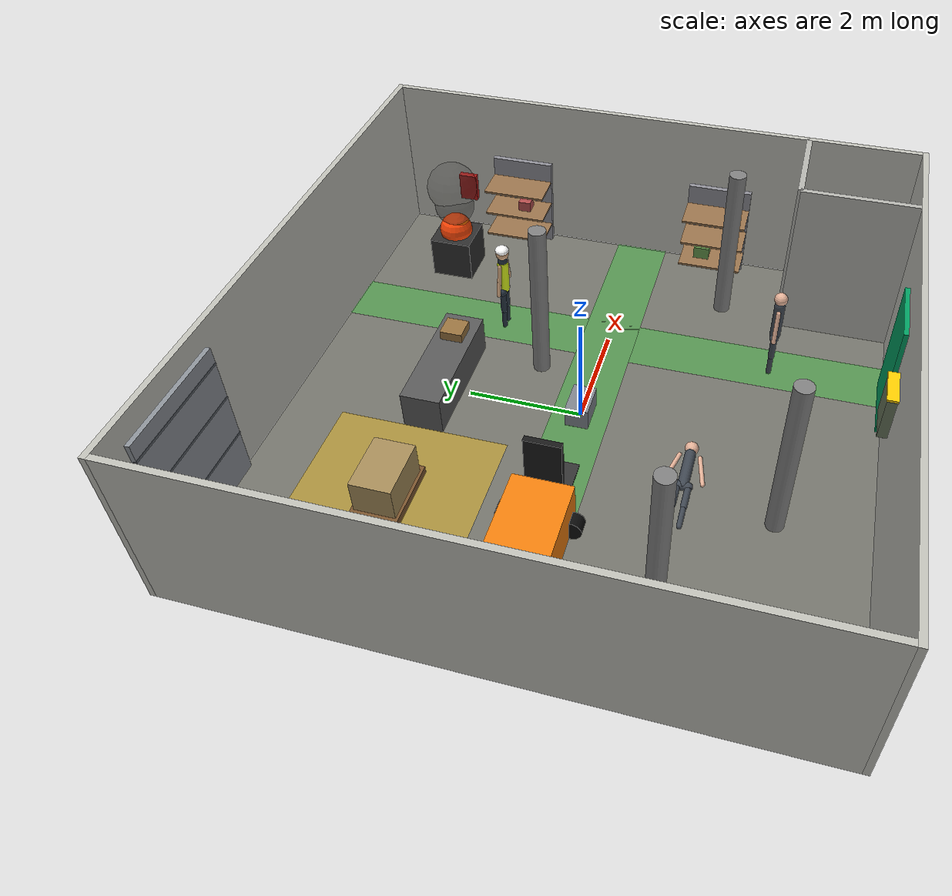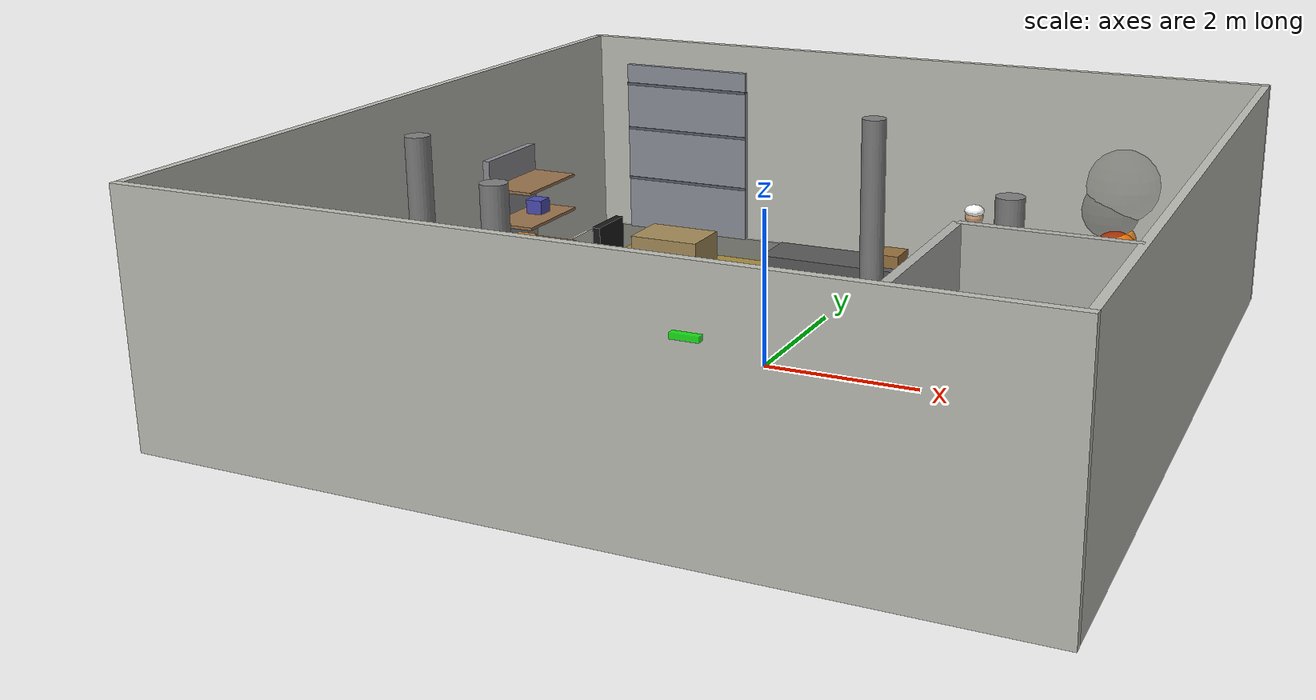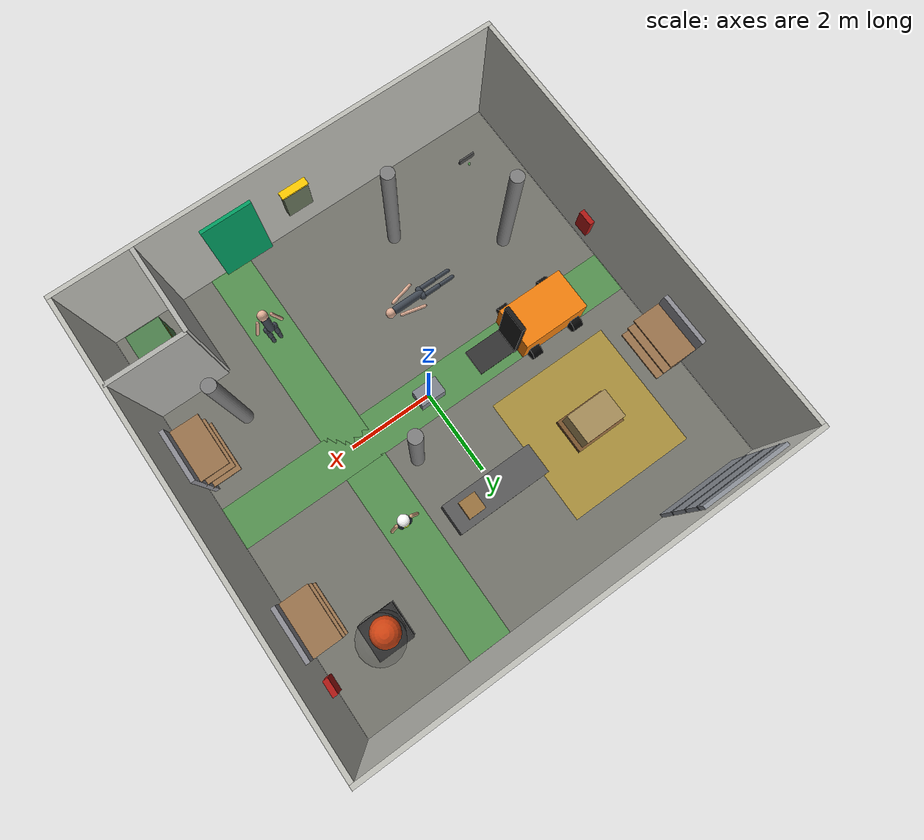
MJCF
<mujoco model="industrial_factory">
    <compiler inertiafromgeom="true"/>
    <worldbody>
        <!-- ================================================================
             1. 기본 공장 바닥 및 조명
             ================================================================ -->
        <geom name="floor" type="plane" size="5 5 0.1" rgba="0.45 0.45 0.42 1" friction="1.0 0.005 0.0001"/>
        <light directional="true" diffuse=".8 .8 .8" specular=".3 .3 .3" pos="0 0 5" dir="0 0 -1"/>
        <!-- 보조 조명 -->
        <light directional="false" diffuse=".4 .4 .4" specular=".1 .1 .1" pos="3 3 3.5" dir="-0.3 -0.3 -1"/>
        <light directional="false" diffuse=".4 .4 .4" specular=".1 .1 .1" pos="-3 -3 3.5" dir="0.3 0.3 -1"/>

        <!-- 안전 보행로 (초록색 얇은 바닥) -->
        <geom name="walkway_main" type="box" size="5.0 0.5 0.001" pos="0 0 0.001" rgba="0.2 0.8 0.2 0.4" contype="0" conaffinity="0"/>
        <geom name="walkway_sub" type="box" size="0.5 5.0 0.001" pos="2 0 0.001" rgba="0.2 0.8 0.2 0.4" contype="0" conaffinity="0"/>

        <!-- 물류 적재 구역 (노란색 얇은 바닥) -->
        <geom name="storage_area_1" type="box" size="1.5 1.5 0.001" pos="-2.5 2.5 0.001" rgba="0.92 0.72 0.1 0.5" contype="0" conaffinity="0"/>

        <!-- ================================================================
             3. 벽면 (10x10)
             ================================================================ -->
        <geom name="wall_north" type="box" size="5.1 0.05 1.5" pos="0 5.05 1.5" rgba="0.75 0.75 0.72 1"/>
        <geom name="wall_south" type="box" size="5.1 0.05 1.5" pos="0 -5.05 1.5" rgba="0.75 0.75 0.72 1"/>
        <geom name="wall_east" type="box" size="0.05 5.0 1.5" pos="5.05 0 1.5" rgba="0.75 0.75 0.72 1"/>
        <geom name="wall_west" type="box" size="0.05 5.0 1.5" pos="-5.05 0 1.5" rgba="0.75 0.75 0.72 1"/>

        <!-- ================================================================
             4. 충전 스테이션
             ================================================================ -->
        <body name="charging_station" pos="-4 -4 0">
            <geom name="station_body" type="box" size="0.2 0.02 0.075" pos="0 -0.13 0.075" rgba="0.3 0.3 0.3 1" mass="2.0"/>
            <site name="docking_port" pos="0 0 0.01" size="0.03" rgba="0 1 0 0.3"/>
        </body>

        <!-- ================================================================
             5. 장애물 및 적치물 (물류 구역 및 통로 상)
             ================================================================ -->
        <!-- 정상적인 물류 적재물 -->
        <body name="pallet_normal" pos="-2.5 2.5 0">
            <geom name="pallet_base_1" type="box" size="0.6 0.4 0.07" pos="0 0 0.07" rgba="0.48 0.33 0.18 1" mass="25.0"/>
            <geom name="cargo_1" type="box" size="0.5 0.35 0.3" pos="0 0 0.44" rgba="0.65 0.55 0.35 1" mass="15.0"/>
        </body>

        <!-- 보행로 상에 무단 방치된 장애물 (통로 방해 상황) -->
        <body name="obstacle_on_walkway" pos="0 0 0">
            <geom name="obstacle_box" type="box" size="0.3 0.2 0.2" pos="0 0 0.2" rgba="0.5 0.52 0.55 1" mass="10.0"/>
        </body>

        <!-- ================================================================
             6. 동적 액터 더미 모델 (지게차, 작업자)
             ================================================================ -->
        <!-- 지게차 모델 (간단한 형태) - 움직이는 물체 감지 시나리오용 -->
        <body name="forklift" pos="-3 0 0">

            <!-- 지게차 전체를 자유롭게 이동/회전시키기 위한 free joint -->
            <freejoint name="forklift_freejoint"/>

            <!-- 질량/관성 직접 지정 -->
            <inertial
                pos="0 0 0.5"
                mass="260"
                diaginertia="100 100 100"/>

            <!-- 차체 -->
            <geom name="fl_body"
                type="box"
                size="0.8 0.5 0.4"
                pos="0 0 0.4"
                rgba="0.95 0.5 0.05 1.0"/>

            <!-- 포크 -->
            <geom name="fl_fork"
                type="box"
                size="0.5 0.3 0.02"
                pos="1.3 0 0.1"
                rgba="0.2 0.2 0.2 1"/>

            <!-- 마스트 -->
            <geom name="fl_mast"
                type="box"
                size="0.05 0.3 0.8"
                pos="0.85 0 0.8"
                rgba="0.1 0.1 0.1 1"/>

            <!-- 앞 왼쪽 바퀴 -->
            <geom name="fl_wheel_fl"
                  type="cylinder"
                  size="0.18 0.12"
                  pos="0.55 0.52 0.18"
                  quat="0.7071 0 0.7071 0"
                  rgba="0.05 0.05 0.05 1"/>

            <!-- 앞 오른쪽 바퀴 -->
            <geom name="fl_wheel_fr"
                  type="cylinder"
                  size="0.18 0.12"
                  pos="0.55 -0.52 0.18"
                  quat="0.7071 0 0.7071 0"
                  rgba="0.05 0.05 0.05 1"/>

            <!-- 뒤 왼쪽 바퀴 -->
            <geom name="fl_wheel_rl"
                  type="cylinder"
                  size="0.18 0.12"
                  pos="-0.55 0.52 0.18"
                  quat="0.7071 0 0.7071 0"
                  rgba="0.05 0.05 0.05 1"/>

            <!-- 뒤 오른쪽 바퀴 -->
            <geom name="fl_wheel_rr"
                  type="cylinder"
                  size="0.18 0.12"
                  pos="-0.55 -0.52 0.18"
                  quat="0.7071 0 0.7071 0"
                  rgba="0.05 0.05 0.05 1"/>
        </body>

        <body name="worker_normal" pos="2 2 0">
            <!-- 머리 (head) -->
            <geom name="wn_head" type="sphere" size="0.115" pos="0 0 1.62"
                  rgba="0.82 0.65 0.50 1" mass="5.0"/>
            <!-- PPE: 안전모 (하드햇, 머리 상단에 씌움) -->
            <geom name="wn_helmet" type="ellipsoid" size="0.125 0.125 0.075" pos="0 0 1.70"
                  rgba="1.0 1.0 1.0 1" mass="0.5"/>
            <!-- 몸통 (torso: 골반~어깨) -->
            <geom name="wn_torso" type="capsule" fromto="0 0 0.82 0 0 1.48"
                  size="0.092" rgba="0.15 0.20 0.25 1" mass="30.0"/>
            <!-- PPE: 안전조끼 (torso 위에 약간 크게 씌움) -->
            <geom name="wn_vest" type="capsule" fromto="0 0 0.84 0 0 1.40"
                  size="0.100" rgba="0.85 0.95 0.10 0.90" mass="0.1"
                  contype="0" conaffinity="0"/>
            <!-- 골반 (pelvis) -->
            <geom name="wn_pelvis" type="capsule" fromto="-0.09 0 0.80 0.09 0 0.80"
                  size="0.075" rgba="0.15 0.20 0.25 1" mass="8.0"/>
            <!-- 왼쪽 대퇴 (left upper leg) -->
            <geom name="wn_luleg" type="capsule" fromto="-0.09 0 0.80 -0.09 0 0.38"
                  size="0.055" rgba="0.15 0.20 0.25 1" mass="8.0"/>
            <!-- 왼쪽 하퇴 (left lower leg) -->
            <geom name="wn_llleg" type="capsule" fromto="-0.09 0 0.38 -0.09 0 0.00"
                  size="0.045" rgba="0.15 0.20 0.25 1" mass="4.0"/>
            <!-- 오른쪽 대퇴 (right upper leg) -->
            <geom name="wn_ruleg" type="capsule" fromto="0.09 0 0.80 0.09 0 0.38"
                  size="0.055" rgba="0.15 0.20 0.25 1" mass="8.0"/>
            <!-- 오른쪽 하퇴 (right lower leg) -->
            <geom name="wn_rlleg" type="capsule" fromto="0.09 0 0.38 0.09 0 0.00"
                  size="0.045" rgba="0.15 0.20 0.25 1" mass="4.0"/>
            <!-- 왼팔 (left arm: 어깨~손목, 약간 내린 자세) -->
            <geom name="wn_larm" type="capsule" fromto="-0.17 0 1.44 -0.30 0 0.90"
                  size="0.037" rgba="0.82 0.65 0.50 1" mass="4.0"/>
            <!-- 오른팔 (right arm: 어깨~손목) -->
            <geom name="wn_rarm" type="capsule" fromto="0.17 0 1.44 0.30 0 0.90"
                  size="0.037" rgba="0.82 0.65 0.50 1" mass="4.0"/>
        </body>

        <body name="worker_no_ppe" pos="2 -3 0">
            <!-- 머리 -->
            <geom name="wp_head" type="sphere" size="0.115" pos="0 0 1.62"
                  rgba="0.90 0.70 0.60 1" mass="5.0"/>
            <!-- 몸통 -->
            <geom name="wp_torso" type="capsule" fromto="0 0 0.82 0 0 1.48"
                  size="0.092" rgba="0.25 0.28 0.32 1" mass="30.0"/>
            <!-- 골반 -->
            <geom name="wp_pelvis" type="capsule" fromto="-0.09 0 0.80 0.09 0 0.80"
                  size="0.075" rgba="0.25 0.28 0.32 1" mass="8.0"/>
            <!-- 왼쪽 대퇴 -->
            <geom name="wp_luleg" type="capsule" fromto="-0.09 0 0.80 -0.09 0 0.38"
                  size="0.055" rgba="0.25 0.28 0.32 1" mass="8.0"/>
            <!-- 왼쪽 하퇴 -->
            <geom name="wp_llleg" type="capsule" fromto="-0.09 0 0.38 -0.09 0 0.00"
                  size="0.045" rgba="0.25 0.28 0.32 1" mass="4.0"/>
            <!-- 오른쪽 대퇴 -->
            <geom name="wp_ruleg" type="capsule" fromto="0.09 0 0.80 0.09 0 0.38"
                  size="0.055" rgba="0.25 0.28 0.32 1" mass="8.0"/>
            <!-- 오른쪽 하퇴 -->
            <geom name="wp_rlleg" type="capsule" fromto="0.09 0 0.38 0.09 0 0.00"
                  size="0.045" rgba="0.25 0.28 0.32 1" mass="4.0"/>
            <!-- 왼팔 -->
            <geom name="wp_larm" type="capsule" fromto="-0.17 0 1.44 -0.30 0 0.90"
                  size="0.037" rgba="0.90 0.70 0.60 1" mass="4.0"/>
            <!-- 오른팔 -->
            <geom name="wp_rarm" type="capsule" fromto="0.17 0 1.44 0.30 0 0.90"
                  size="0.037" rgba="0.90 0.70 0.60 1" mass="4.0"/>
            <!-- 안전모 없음 - 머리만 노출 (위에서 정의됨) -->
        </body>

        <body name="worker_fallen" pos="-2 -2 0.115" quat="0.5 0.5 0.5 0.5">

            <!-- 머리 -->
            <geom name="wf_head"
                type="sphere"
                size="0.115"
                pos="0 0 1.62"
                rgba="0.90 0.70 0.60 1"
                mass="5.0"/>

            <!-- 몸통 -->
            <geom name="wf_torso"
                type="capsule"
                fromto="0 0 0.82 0 0 1.48"
                size="0.092"
                rgba="0.25 0.28 0.32 1"
                mass="30.0"/>

            <!-- 골반 -->
            <geom name="wf_pelvis"
                type="capsule"
                fromto="-0.09 0 0.80 0.09 0 0.80"
                size="0.075"
                rgba="0.25 0.28 0.32 1"
                mass="8.0"/>

            <!-- 왼쪽 대퇴 -->
            <geom name="wf_luleg"
                type="capsule"
                fromto="-0.09 0 0.80 -0.09 0 0.38"
                size="0.055"
                rgba="0.25 0.28 0.32 1"
                mass="8.0"/>

            <!-- 왼쪽 하퇴 -->
            <geom name="wf_llleg"
                type="capsule"
                fromto="-0.09 0 0.38 -0.09 0 0.00"
                size="0.045"
                rgba="0.25 0.28 0.32 1"
                mass="4.0"/>

            <!-- 오른쪽 대퇴 -->
            <geom name="wf_ruleg"
                type="capsule"
                fromto="0.09 0 0.80 0.09 0 0.38"
                size="0.055"
                rgba="0.25 0.28 0.32 1"
                mass="8.0"/>

            <!-- 오른쪽 하퇴 -->
            <geom name="wf_rlleg"
                type="capsule"
                fromto="0.09 0 0.38 0.09 0 0.00"
                size="0.045"
                rgba="0.25 0.28 0.32 1"
                mass="4.0"/>

            <!-- 왼팔 -->
            <geom name="wf_larm"
                type="capsule"
                fromto="-0.17 0 1.44 -0.30 0 0.90"
                size="0.037"
                rgba="0.90 0.70 0.60 1"
                mass="4.0"/>

            <!-- 오른팔 -->
            <geom name="wf_rarm"
                type="capsule"
                fromto="0.17 0 1.44 0.30 0 0.90"
                size="0.037"
                rgba="0.90 0.70 0.60 1"
                mass="4.0"/>

        </body>

        <!-- ================================================================
             7. 화재 발생 구역 시뮬레이션
             ================================================================ -->
        <!-- 특정 적치물에서 발화가 일어난 상황 (시각적 + 가상 온도 감지용) -->
        <body name="fire_zone" pos="3.5 3.5 0">
            <!-- Burned cargo -->
            <geom name="burning_cargo" type="box"
                size="0.40 0.40 0.40" pos="0 0 0.40"
                rgba="0.18 0.18 0.18 1" mass="30"/>

            <!-- Lower flame (reddish orange) -->
            <geom name="flame_base" type="sphere"
                size="0.32" pos="0 0 0.88"
                rgba="1.0 0.28 0.03 0.90"
                contype="0" conaffinity="0"/>

            <!-- Middle flame (orange) -->
            <geom name="flame_mid" type="sphere" size="0.24"
                pos="0.03 -0.02 1.08"
                rgba="1.0 0.55 0.06 0.80"
                contype="0" conaffinity="0"/>

            <!-- Upper flame (yellow) -->
            <geom name="flame_top" type="sphere"
                size="0.16" pos="-0.02 0.02 1.25"
                rgba="1.0 0.85 0.18 0.70"
                contype="0" conaffinity="0"/>

            <!-- Smoke -->
            <geom name="smoke_1" type="sphere"
                size="0.38" pos="-0.08 -0.05 1.50"
                rgba="0.18 0.18 0.18 0.35"
                contype="0" conaffinity="0"/>

            <geom name="smoke_2" type="sphere"
                size="0.48" pos="0.05 0.02 1.82"
                rgba="0.25 0.25 0.25 0.22"
                contype="0" conaffinity="0"/>
        </body>

        <body name="column_1" pos="-1.5 -3.5 0">
            <geom name="column_1_geom" type="cylinder" size="0.15 1.5" pos="0 0 1.5" rgba="0.5 0.5 0.5 1" mass="80.0"/>
        </body>
        <body name="column_2" pos="1 1 0">
            <geom name="column_2_geom" type="cylinder" size="0.15 1.5" pos="0 0 1.5" rgba="0.5 0.5 0.5 1" mass="80.0"/>
        </body>
        <body name="column_3" pos="3.5 -1.9 0">
            <geom name="column_3_geom" type="cylinder" size="0.15 1.5" pos="0 0 1.5" rgba="0.5 0.5 0.5 1" mass="80.0"/>
        </body>
        <body name="column_4" pos="-3.5 -2 0">
            <geom name="column_4_geom" type="cylinder" size="0.15 1.5" pos="0 0 1.5" rgba="0.5 0.5 0.5 1" mass="80.0"/>
        </body>

        <!-- 서쪽 벽면 선반 -->
        <body name="wall_shelf_west" pos="-4.85 2.0 0">
            <geom name="shelf_west_back" type="box" size="0.05 0.6 0.9" pos="0 0 0.9" rgba="0.55 0.55 0.58 1" mass="8.0"/>
            <geom name="shelf_west_tier1" type="box" size="0.35 0.6 0.02" pos="0.35 0 0.4" rgba="0.6 0.45 0.3 1" mass="5.0"/>
            <geom name="shelf_west_tier2" type="box" size="0.35 0.6 0.02" pos="0.35 0 0.9" rgba="0.6 0.45 0.3 1" mass="5.0"/>
            <geom name="shelf_west_tier3" type="box" size="0.35 0.6 0.02" pos="0.35 0 1.4" rgba="0.6 0.45 0.3 1" mass="5.0"/>
            <geom name="shelf_west_item1" type="box" size="0.15 0.15 0.12" pos="0.3 -0.2 0.54" rgba="0.7 0.5 0.2 1" mass="3.0"/>
            <geom name="shelf_west_item2" type="box" size="0.12 0.12 0.1" pos="0.35 0.15 1.02" rgba="0.3 0.3 0.7 1" mass="2.0"/>
        </body>

        <!-- 동쪽 벽면 선반 1 -->
        <body name="wall_shelf_east_1" pos="4.85 -1.5 0">
            <geom name="shelf_east1_back" type="box" size="0.05 0.6 0.9" pos="0 0 0.9" rgba="0.55 0.55 0.58 1" mass="8.0"/>
            <geom name="shelf_east1_tier1" type="box" size="0.35 0.6 0.02" pos="-0.35 0 0.4" rgba="0.6 0.45 0.3 1" mass="5.0"/>
            <geom name="shelf_east1_tier2" type="box" size="0.35 0.6 0.02" pos="-0.35 0 0.9" rgba="0.6 0.45 0.3 1" mass="5.0"/>
            <geom name="shelf_east1_tier3" type="box" size="0.35 0.6 0.02" pos="-0.35 0 1.4" rgba="0.6 0.45 0.3 1" mass="5.0"/>
            <geom name="shelf_east1_item1" type="box" size="0.15 0.15 0.12" pos="-0.3 0.2 0.54" rgba="0.4 0.6 0.3 1" mass="3.0"/>
        </body>

        <!-- 동쪽 벽면 선반 2 -->
        <body name="wall_shelf_east_2" pos="4.85 2.5 0">
            <geom name="shelf_east2_back" type="box" size="0.05 0.6 0.9" pos="0 0 0.9" rgba="0.55 0.55 0.58 1" mass="8.0"/>
            <geom name="shelf_east2_tier1" type="box" size="0.35 0.6 0.02" pos="-0.35 0 0.4" rgba="0.6 0.45 0.3 1" mass="5.0"/>
            <geom name="shelf_east2_tier2" type="box" size="0.35 0.6 0.02" pos="-0.35 0 0.9" rgba="0.6 0.45 0.3 1" mass="5.0"/>
            <geom name="shelf_east2_tier3" type="box" size="0.35 0.6 0.02" pos="-0.35 0 1.4" rgba="0.6 0.45 0.3 1" mass="5.0"/>
            <geom name="shelf_east2_item1" type="box" size="0.12 0.12 0.1" pos="-0.35 -0.15 1.02" rgba="0.7 0.3 0.3 1" mass="2.0"/>
        </body>

        <body name="utility_room_wall_1" pos="3.3 -4.0 0">
            <geom name="utility_wall_1_geom" type="box" size="0.05 1.0 1.5" pos="0 0 1.5" rgba="0.7 0.7 0.68 1"/>
        </body>
        <body name="utility_room_wall_2" pos="4.175 -3.0 0">
            <geom name="utility_wall_2_geom" type="box" size="0.875 0.05 1.5" pos="0 0 1.5" rgba="0.7 0.7 0.68 1"/>
        </body>
        <!-- 격벽 내부 변압기/설비 박스 -->
        <body name="utility_equipment" pos="4.2 -4.2 0">
            <geom name="transformer_box" type="box" size="0.4 0.3 0.5" pos="0 0 0.5" rgba="0.3 0.5 0.3 1" mass="150.0"/>
            <!-- 고전압 경고 표시 -->
            <geom name="transformer_warning" type="box" size="0.4 0.31 0.05" pos="0 0 0.85" rgba="1 0.8 0 1" contype="0" conaffinity="0"/>
        </body>

        <!-- ================================================================
             11. 출입구 - 하역장 셔터도어 & 비상구 (기본 인프라)
             ================================================================ -->
        <!-- 북쪽 벽 하역장 셔터도어 -->
        <body name="loading_dock_door" pos="-3.5 5.0 0">
            <geom name="shutter_door" type="box" size="1.0 0.08 1.3" pos="0 0 1.3" rgba="0.55 0.57 0.6 1"/>
            <geom name="shutter_line_1" type="box" size="1.0 0.09 0.02" pos="0 0 0.8" rgba="0.35 0.37 0.4 1" contype="0" conaffinity="0"/>
            <geom name="shutter_line_2" type="box" size="1.0 0.09 0.02" pos="0 0 1.6" rgba="0.35 0.37 0.4 1" contype="0" conaffinity="0"/>
            <geom name="shutter_line_3" type="box" size="1.0 0.09 0.02" pos="0 0 2.3" rgba="0.35 0.37 0.4 1" contype="0" conaffinity="0"/>
        </body>

        <!-- 남쪽 벽 비상구 -->
        <body name="emergency_exit" pos="1.5 -5.0 0">
            <geom name="exit_door" type="box" size="0.6 0.08 1.1" pos="0 0 1.1" rgba="0.0 0.62 0.38 1"/>
            <site name="exit_sign" pos="0 -0.1 2.3" size="0.15 0.08 0.03" type="box" rgba="0 1 0 0.8"/>
        </body>

        <!-- ================================================================
             12. 벽면 전기 배전반 & 소화기함 (기본 인프라)
             ================================================================ -->
        <body name="electrical_panel" pos="0 -4.85 0">
            <geom name="panel_box" type="box" size="0.3 0.08 0.4" pos="0 0 1.5" rgba="0.4 0.45 0.35 1" mass="15.0"/>
            <geom name="panel_warning_stripe" type="box" size="0.32 0.09 0.02" pos="0 0 1.9" rgba="1 0.8 0 1" contype="0" conaffinity="0"/>
        </body>

        <body name="fire_extinguisher_1" pos="4.85 3.7 0">
            <geom name="extinguisher_cabinet_1" type="box" size="0.06 0.18 0.28" pos="0 0 1.0" rgba="0.69 0.09 0.08 1" mass="5.0"/>
        </body>
        <body name="fire_extinguisher_2" pos="-4.85 -1.0 0">
            <geom name="extinguisher_cabinet_2" type="box" size="0.06 0.18 0.28" pos="0 0 1.0" rgba="0.69 0.09 0.08 1" mass="5.0"/>
        </body>

        <!-- ================================================================
             13. 컨베이어벨트 (물류 이동 설비, 기본 인프라)
             ================================================================ -->
        <body name="conveyor_belt" pos="0.1 2.5 0">
            <geom name="conveyor_frame" type="box" size="1.1 0.35 0.35" pos="0 0 0.35" rgba="0.35 0.35 0.35 1" mass="60.0"/>
            <geom name="conveyor_belt_surface" type="box" size="1.05 0.3 0.02" pos="0 0 0.55" rgba="0.1 0.1 0.1 1" contype="0" conaffinity="0"/>
            <!-- 컨베이어 위 화물 (정적 배치, 이동 로직은 시뮬레이션 코드에서 별도 처리) -->
            <geom name="conveyor_cargo" type="box" size="0.2 0.2 0.15" pos="0.6 0 0.72" rgba="0.6 0.45 0.25 1" mass="8.0"/>
        </body>

    </worldbody>
</mujoco>
